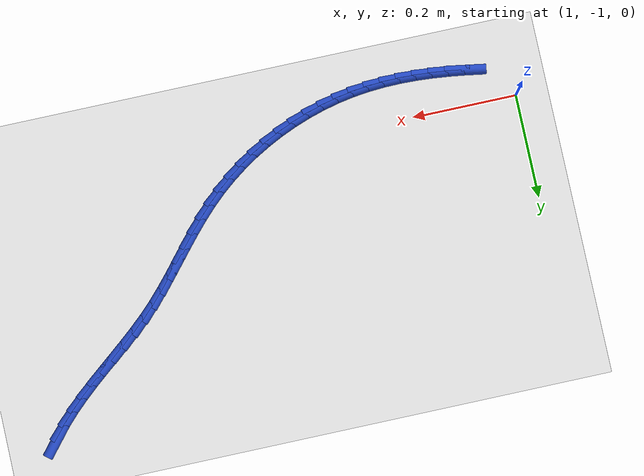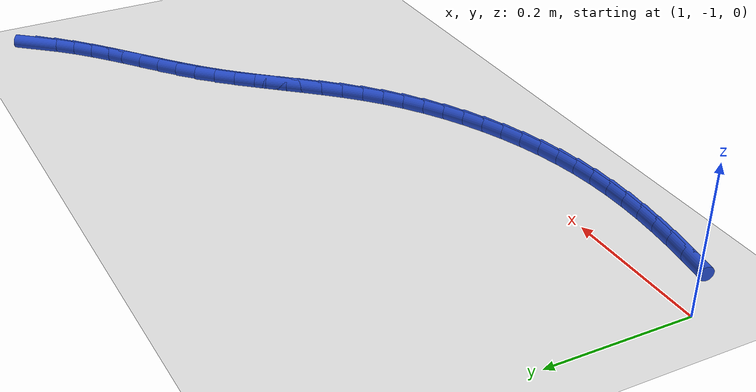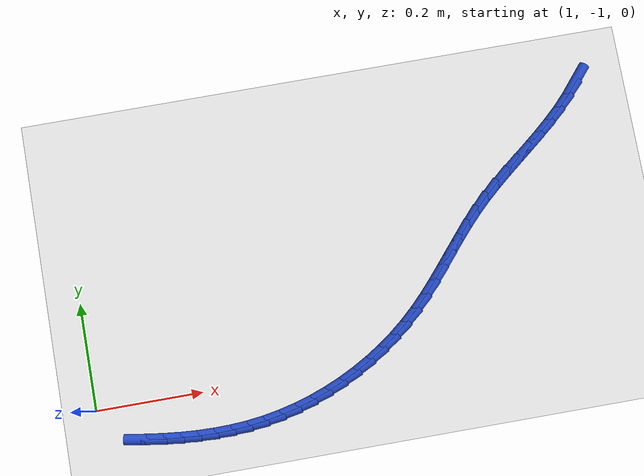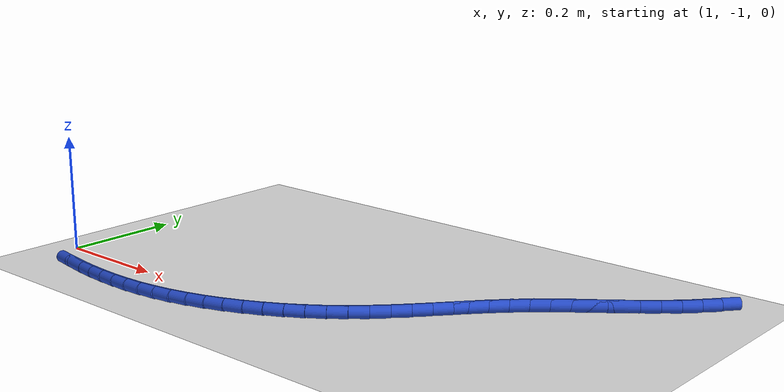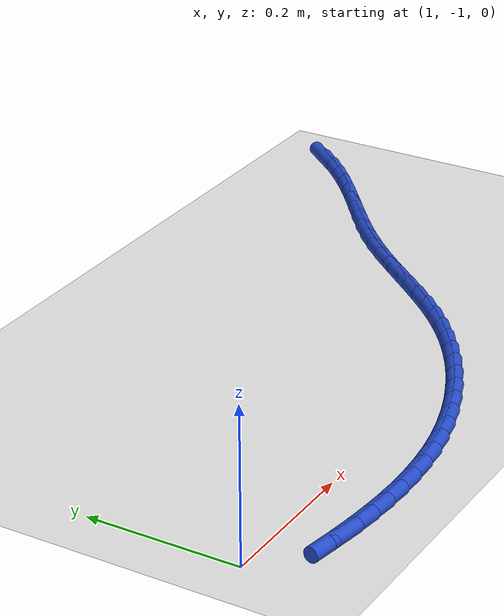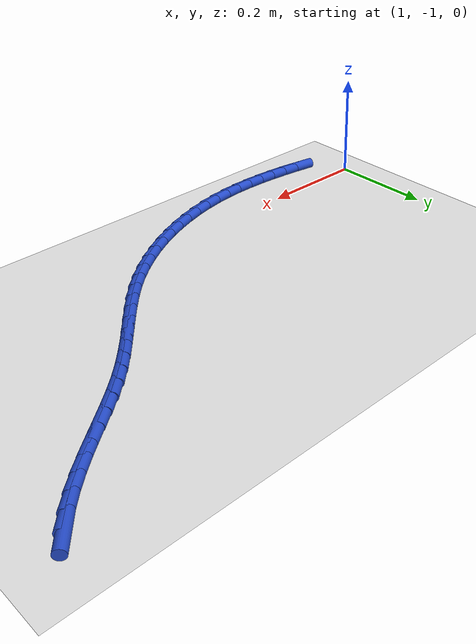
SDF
<sdf version="1.6">
 <world name="default">
  <model name="ground_plane">
   <static>1</static>
   <link name="link">
    <collision name="collision">
     <geometry><plane><normal>0 0 1</normal><size>100 100</size></plane></geometry>
     <surface><friction><ode><mu>100</mu><mu2>50</mu2></ode></friction></surface>
    </collision>
    <visual name="visual">
     <cast_shadows>0</cast_shadows>
     <geometry><plane><normal>0 0 1</normal><size>100 100</size></plane></geometry>
     <material>
      <script><uri>file://media/materials/scripts/gazebo.material</uri><name>Gazebo/WhiteGlow</name></script>
     </material>
    </visual>
   </link>
  </model>
  <model name="line">
   <link name="link_121">
    <pose>1.9877246116815392 -0.5465985021685742 0.01 0 1.57 0.8757215789177172</pose>
    <collision name="collision">
     <geometry><cylinder><radius>0.01</radius><length>0.08</length></cylinder></geometry>
    </collision>
    <visual name="visual">
     <material>
      <script><name>Gazebo/Blue</name><uri>file://media/materials/scripts/gazebo.material</uri></script>
     </material>
     <geometry><cylinder><radius>0.01</radius><length>0.08</length></cylinder></geometry>
    </visual>
   </link>
   <link name="link_122">
    <pose>1.9680293872790298 -0.5702166083770608 0.01 0 1.57 0.8065626346333348</pose>
    <collision name="collision">
     <geometry><cylinder><radius>0.01</radius><length>0.08</length></cylinder></geometry>
    </collision>
    <visual name="visual">
     <material>
      <script><name>Gazebo/Blue</name><uri>file://media/materials/scripts/gazebo.material</uri></script>
     </material>
     <geometry><cylinder><radius>0.01</radius><length>0.08</length></cylinder></geometry>
    </visual>
   </link>
   <link name="link_123">
    <pose>1.9466743241644302 -0.5924952946369927 0.01 0 1.57 0.7523703303545539</pose>
    <collision name="collision">
     <geometry><cylinder><radius>0.01</radius><length>0.08</length></cylinder></geometry>
    </collision>
    <visual name="visual">
     <material>
      <script><name>Gazebo/Blue</name><uri>file://media/materials/scripts/gazebo.material</uri></script>
     </material>
     <geometry><cylinder><radius>0.01</radius><length>0.08</length></cylinder></geometry>
    </visual>
   </link>
   <link name="link_124">
    <pose>1.9239984757561464 -0.6137206538355655 0.01 0 1.57 0.7130007389090254</pose>
    <collision name="collision">
     <geometry><cylinder><radius>0.01</radius><length>0.08</length></cylinder></geometry>
    </collision>
    <visual name="visual">
     <material>
      <script><name>Gazebo/Blue</name><uri>file://media/materials/scripts/gazebo.material</uri></script>
     </material>
     <geometry><cylinder><radius>0.01</radius><length>0.08</length></cylinder></geometry>
    </visual>
   </link>
   <link name="link_125">
    <pose>1.9003408954725862 -0.6341787788599762 0.01 0 1.57 0.6880656786402913</pose>
    <collision name="collision">
     <geometry><cylinder><radius>0.01</radius><length>0.08</length></cylinder></geometry>
    </collision>
    <visual name="visual">
     <material>
      <script><name>Gazebo/Blue</name><uri>file://media/materials/scripts/gazebo.material</uri></script>
     </material>
     <geometry><cylinder><radius>0.01</radius><length>0.08</length></cylinder></geometry>
    </visual>
   </link>
   <link name="link_126">
    <pose>1.8760406367321574 -0.654155762597419 0.01 0 1.57 0.6771854019328604</pose>
    <collision name="collision">
     <geometry><cylinder><radius>0.01</radius><length>0.08</length></cylinder></geometry>
    </collision>
    <visual name="visual">
     <material>
      <script><name>Gazebo/Blue</name><uri>file://media/materials/scripts/gazebo.material</uri></script>
     </material>
     <geometry><cylinder><radius>0.01</radius><length>0.08</length></cylinder></geometry>
    </visual>
   </link>
   <link name="link_127">
    <pose>1.8514367529532674 -0.6739376979350908 0.01 0 1.57 0.6801333423922812</pose>
    <collision name="collision">
     <geometry><cylinder><radius>0.01</radius><length>0.08</length></cylinder></geometry>
    </collision>
    <visual name="visual">
     <material>
      <script><name>Gazebo/Blue</name><uri>file://media/materials/scripts/gazebo.material</uri></script>
     </material>
     <geometry><cylinder><radius>0.01</radius><length>0.08</length></cylinder></geometry>
    </visual>
   </link>
   <link name="link_128">
    <pose>1.826868297554323 -0.6938106777601875 0.01 0 1.57 0.6968925103434557</pose>
    <collision name="collision">
     <geometry><cylinder><radius>0.01</radius><length>0.08</length></cylinder></geometry>
    </collision>
    <visual name="visual">
     <material>
      <script><name>Gazebo/Blue</name><uri>file://media/materials/scripts/gazebo.material</uri></script>
     </material>
     <geometry><cylinder><radius>0.01</radius><length>0.08</length></cylinder></geometry>
    </visual>
   </link>
   <link name="link_129">
    <pose>1.8026743239537315 -0.7140607949599047 0.01 0 1.57 0.727637030055655</pose>
    <collision name="collision">
     <geometry><cylinder><radius>0.01</radius><length>0.08</length></cylinder></geometry>
    </collision>
    <visual name="visual">
     <material>
      <script><name>Gazebo/Blue</name><uri>file://media/materials/scripts/gazebo.material</uri></script>
     </material>
     <geometry><cylinder><radius>0.01</radius><length>0.08</length></cylinder></geometry>
    </visual>
   </link>
   <link name="link_130">
    <pose>1.7791938855699005 -0.7349741424214385 0.01 0 1.57 0.7722240055977929</pose>
    <collision name="collision">
     <geometry><cylinder><radius>0.01</radius><length>0.08</length></cylinder></geometry>
    </collision>
    <visual name="visual">
     <material>
      <script><name>Gazebo/Blue</name><uri>file://media/materials/scripts/gazebo.material</uri></script>
     </material>
     <geometry><cylinder><radius>0.01</radius><length>0.08</length></cylinder></geometry>
    </visual>
   </link>
   <link name="link_131">
    <pose>1.7567562322793313 -0.7568282552362623 0.01 0 1.57 0.8181088693113724</pose>
    <collision name="collision">
     <geometry><cylinder><radius>0.01</radius><length>0.08</length></cylinder></geometry>
    </collision>
    <visual name="visual">
     <material>
      <script><name>Gazebo/Blue</name><uri>file://media/materials/scripts/gazebo.material</uri></script>
     </material>
     <geometry><cylinder><radius>0.01</radius><length>0.08</length></cylinder></geometry>
    </visual>
   </link>
   <link name="link_132">
    <pose>1.735390950921321 -0.7796390839499024 0.01 0 1.57 0.8503718866807272</pose>
    <collision name="collision">
     <geometry><cylinder><radius>0.01</radius><length>0.08</length></cylinder></geometry>
    </collision>
    <visual name="visual">
     <material>
      <script><name>Gazebo/Blue</name><uri>file://media/materials/scripts/gazebo.material</uri></script>
     </material>
     <geometry><cylinder><radius>0.01</radius><length>0.08</length></cylinder></geometry>
    </visual>
   </link>
   <link name="link_133">
    <pose>1.714779842951055 -0.8031189871712913 0.01 0 1.57 0.868083366581772</pose>
    <collision name="collision">
     <geometry><cylinder><radius>0.01</radius><length>0.08</length></cylinder></geometry>
    </collision>
    <visual name="visual">
     <material>
      <script><name>Gazebo/Blue</name><uri>file://media/materials/scripts/gazebo.material</uri></script>
     </material>
     <geometry><cylinder><radius>0.01</radius><length>0.08</length></cylinder></geometry>
    </visual>
   </link>
   <link name="link_134">
    <pose>1.694585214846865 -0.8269633057793294 0.01 0 1.57 0.8712439132798121</pose>
    <collision name="collision">
     <geometry><cylinder><radius>0.01</radius><length>0.08</length></cylinder></geometry>
    </collision>
    <visual name="visual">
     <material>
      <script><name>Gazebo/Blue</name><uri>file://media/materials/scripts/gazebo.material</uri></script>
     </material>
     <geometry><cylinder><radius>0.01</radius><length>0.08</length></cylinder></geometry>
    </visual>
   </link>
   <link name="link_135">
    <pose>1.6744693730870848 -0.8508673806529174 0.01 0 1.57 0.8598487770022336</pose>
    <collision name="collision">
     <geometry><cylinder><radius>0.01</radius><length>0.08</length></cylinder></geometry>
    </collision>
    <visual name="visual">
     <material>
      <script><name>Gazebo/Blue</name><uri>file://media/materials/scripts/gazebo.material</uri></script>
     </material>
     <geometry><cylinder><radius>0.01</radius><length>0.08</length></cylinder></geometry>
    </visual>
   </link>
   <link name="link_136">
    <pose>1.6540946241500456 -0.8745265526709551 0.01 0 1.57 0.8338677449760562</pose>
    <collision name="collision">
     <geometry><cylinder><radius>0.01</radius><length>0.08</length></cylinder></geometry>
    </collision>
    <visual name="visual">
     <material>
      <script><name>Gazebo/Blue</name><uri>file://media/materials/scripts/gazebo.material</uri></script>
     </material>
     <geometry><cylinder><radius>0.01</radius><length>0.08</length></cylinder></geometry>
    </visual>
   </link>
   <link name="link_137">
    <pose>1.6331232745140813 -0.8976361627123434 0.01 0 1.57 0.7933177647486854</pose>
    <collision name="collision">
     <geometry><cylinder><radius>0.01</radius><length>0.08</length></cylinder></geometry>
    </collision>
    <visual name="visual">
     <material>
      <script><name>Gazebo/Blue</name><uri>file://media/materials/scripts/gazebo.material</uri></script>
     </material>
     <geometry><cylinder><radius>0.01</radius><length>0.08</length></cylinder></geometry>
    </visual>
   </link>
   <link name="link_138">
    <pose>1.6112176306575234 -0.9198915516559822 0.01 0 1.57 0.7390192059597903</pose>
    <collision name="collision">
     <geometry><cylinder><radius>0.01</radius><length>0.08</length></cylinder></geometry>
    </collision>
    <visual name="visual">
     <material>
      <script><name>Gazebo/Blue</name><uri>file://media/materials/scripts/gazebo.material</uri></script>
     </material>
     <geometry><cylinder><radius>0.01</radius><length>0.08</length></cylinder></geometry>
    </visual>
   </link>
   <link name="link_139">
    <pose>1.588057200207674 -0.940997481186663 0.01 0 1.57 0.6799031492709348</pose>
    <collision name="collision">
     <geometry><cylinder><radius>0.01</radius><length>0.08</length></cylinder></geometry>
    </collision>
    <visual name="visual">
     <material>
      <script><name>Gazebo/Blue</name><uri>file://media/materials/scripts/gazebo.material</uri></script>
     </material>
     <geometry><cylinder><radius>0.01</radius><length>0.08</length></cylinder></geometry>
    </visual>
   </link>
   <link name="link_140">
    <pose>1.563570438241356 -0.9607950576951936 0.01 0 1.57 0.622251792514076</pose>
    <collision name="collision">
     <geometry><cylinder><radius>0.01</radius><length>0.08</length></cylinder></geometry>
    </collision>
    <visual name="visual">
     <material>
      <script><name>Gazebo/Blue</name><uri>file://media/materials/scripts/gazebo.material</uri></script>
     </material>
     <geometry><cylinder><radius>0.01</radius><length>0.08</length></cylinder></geometry>
    </visual>
   </link>
   <link name="link_141">
    <pose>1.5378732167227862 -0.9792280329317253 0.01 0 1.57 0.5658843209721826</pose>
    <collision name="collision">
     <geometry><cylinder><radius>0.01</radius><length>0.08</length></cylinder></geometry>
    </collision>
    <visual name="visual">
     <material>
      <script><name>Gazebo/Blue</name><uri>file://media/materials/scripts/gazebo.material</uri></script>
     </material>
     <geometry><cylinder><radius>0.01</radius><length>0.08</length></cylinder></geometry>
    </visual>
   </link>
   <link name="link_142">
    <pose>1.5110859908726915 -0.9962426688258175 0.01 0 1.57 0.5104544361159886</pose>
    <collision name="collision">
     <geometry><cylinder><radius>0.01</radius><length>0.08</length></cylinder></geometry>
    </collision>
    <visual name="visual">
     <material>
      <script><name>Gazebo/Blue</name><uri>file://media/materials/scripts/gazebo.material</uri></script>
     </material>
     <geometry><cylinder><radius>0.01</radius><length>0.08</length></cylinder></geometry>
    </visual>
   </link>
   <link name="link_143">
    <pose>1.4833292159117966 -1.0117852273070287 0.01 0 1.57 0.45561191134920603</pose>
    <collision name="collision">
     <geometry><cylinder><radius>0.01</radius><length>0.08</length></cylinder></geometry>
    </collision>
    <visual name="visual">
     <material>
      <script><name>Gazebo/Blue</name><uri>file://media/materials/scripts/gazebo.material</uri></script>
     </material>
     <geometry><cylinder><radius>0.01</radius><length>0.08</length></cylinder></geometry>
    </visual>
   </link>
   <link name="link_144">
    <pose>1.4547233470608283 -1.025801970304917 0.01 0 1.57 0.40100479032100456</pose>
    <collision name="collision">
     <geometry><cylinder><radius>0.01</radius><length>0.08</length></cylinder></geometry>
    </collision>
    <visual name="visual">
     <material>
      <script><name>Gazebo/Blue</name><uri>file://media/materials/scripts/gazebo.material</uri></script>
     </material>
     <geometry><cylinder><radius>0.01</radius><length>0.08</length></cylinder></geometry>
    </visual>
   </link>
   <link name="link_145">
    <pose>1.4253888395405114 -1.0382391597490424 0.01 0 1.57 0.3462806041841633</pose>
    <collision name="collision">
     <geometry><cylinder><radius>0.01</radius><length>0.08</length></cylinder></geometry>
    </collision>
    <visual name="visual">
     <material>
      <script><name>Gazebo/Blue</name><uri>file://media/materials/scripts/gazebo.material</uri></script>
     </material>
     <geometry><cylinder><radius>0.01</radius><length>0.08</length></cylinder></geometry>
    </visual>
   </link>
   <link name="link_146">
    <pose>1.395446148571573 -1.049043057568962 0.01 0 1.57 0.2910872043693054</pose>
    <collision name="collision">
     <geometry><cylinder><radius>0.01</radius><length>0.08</length></cylinder></geometry>
    </collision>
    <visual name="visual">
     <material>
      <script><name>Gazebo/Blue</name><uri>file://media/materials/scripts/gazebo.material</uri></script>
     </material>
     <geometry><cylinder><radius>0.01</radius><length>0.08</length></cylinder></geometry>
    </visual>
   </link>
   <link name="link_147">
    <pose>1.365015729374738 -1.0581599256942358 0.01 0 1.57 0.23507378850041896</pose>
    <collision name="collision">
     <geometry><cylinder><radius>0.01</radius><length>0.08</length></cylinder></geometry>
    </collision>
    <visual name="visual">
     <material>
      <script><name>Gazebo/Blue</name><uri>file://media/materials/scripts/gazebo.material</uri></script>
     </material>
     <geometry><cylinder><radius>0.01</radius><length>0.08</length></cylinder></geometry>
    </visual>
   </link>
   <link name="link_148">
    <pose>1.3342180371707326 -1.0655360260544215 0.01 0 1.57 0.17789270627103743</pose>
    <collision name="collision">
     <geometry><cylinder><radius>0.01</radius><length>0.08</length></cylinder></geometry>
    </collision>
    <visual name="visual">
     <material>
      <script><name>Gazebo/Blue</name><uri>file://media/materials/scripts/gazebo.material</uri></script>
     </material>
     <geometry><cylinder><radius>0.01</radius><length>0.08</length></cylinder></geometry>
    </visual>
   </link>
   <link name="link_149">
    <pose>1.303173527180283 -1.0711176205790789 0.01 0 1.57 0.11972615830149921</pose>
    <collision name="collision">
     <geometry><cylinder><radius>0.01</radius><length>0.08</length></cylinder></geometry>
    </collision>
    <visual name="visual">
     <material>
      <script><name>Gazebo/Blue</name><uri>file://media/materials/scripts/gazebo.material</uri></script>
     </material>
     <geometry><cylinder><radius>0.01</radius><length>0.08</length></cylinder></geometry>
    </visual>
   </link>
   <link name="link_150">
    <pose>1.2719953922619065 -1.074868397700033 0.01 0 1.57 0.06445104878381341</pose>
    <collision name="collision">
     <geometry><cylinder><radius>0.01</radius><length>0.08</length></cylinder></geometry>
    </collision>
    <visual name="visual">
     <material>
      <script><name>Gazebo/Blue</name><uri>file://media/materials/scripts/gazebo.material</uri></script>
     </material>
     <geometry><cylinder><radius>0.01</radius><length>0.08</length></cylinder></geometry>
    </visual>
   </link>
   <link name="link_151">
    <pose>1.2407411851196957 -1.0768855579557095 0.01 0 1.57 0.014136572591301624</pose>
    <collision name="collision">
     <geometry><cylinder><radius>0.01</radius><length>0.08</length></cylinder></geometry>
    </collision>
    <visual name="visual">
     <material>
      <script><name>Gazebo/Blue</name><uri>file://media/materials/scripts/gazebo.material</uri></script>
     </material>
     <geometry><cylinder><radius>0.01</radius><length>0.08</length></cylinder></geometry>
    </visual>
   </link>
   <link name="link_152">
    <pose>1.2094427294335284 -1.0773280403225267 0.01 0 1.57 -0.031062843719119403</pose>
    <collision name="collision">
     <geometry><cylinder><radius>0.01</radius><length>0.08</length></cylinder></geometry>
    </collision>
    <visual name="visual">
     <material>
      <script><name>Gazebo/Blue</name><uri>file://media/materials/scripts/gazebo.material</uri></script>
     </material>
     <geometry><cylinder><radius>0.01</radius><length>0.08</length></cylinder></geometry>
    </visual>
   </link>
   <link name="link_153">
    <pose>1.1781317095727353 -1.0763551180614592 0.01 0 1.57 -0.07111408334739344</pose>
    <collision name="collision">
     <geometry><cylinder><radius>0.01</radius><length>0.08</length></cylinder></geometry>
    </collision>
    <visual name="visual">
     <material>
      <script><name>Gazebo/Blue</name><uri>file://media/materials/scripts/gazebo.material</uri></script>
     </material>
     <geometry><cylinder><radius>0.01</radius><length>0.08</length></cylinder></geometry>
    </visual>
   </link>
   <link name="link_154">
    <pose>1.1468398099066481 -1.0741260644334805 0.01 0 1.57 -0.10606003403860752</pose>
    <collision name="collision">
     <geometry><cylinder><radius>0.01</radius><length>0.08</length></cylinder></geometry>
    </collision>
    <visual name="visual">
     <material>
      <script><name>Gazebo/Blue</name><uri>file://media/materials/scripts/gazebo.material</uri></script>
     </material>
     <geometry><cylinder><radius>0.01</radius><length>0.08</length></cylinder></geometry>
    </visual>
   </link>
   <link name="link_155">
    <pose>1.1155987148045983 -1.070800152699565 0.01 0 1.57 -0.13598756717750848</pose>
    <collision name="collision">
     <geometry><cylinder><radius>0.01</radius><length>0.08</length></cylinder></geometry>
    </collision>
    <visual name="visual">
     <material>
      <script><name>Gazebo/Blue</name><uri>file://media/materials/scripts/gazebo.material</uri></script>
     </material>
     <geometry><cylinder><radius>0.01</radius><length>0.08</length></cylinder></geometry>
    </visual>
   </link>
   <link name="link_156">
    <pose>1.0844401086359172 -1.0665366561206866 0.01 0 1.57 -0.16100050977151323</pose>
    <collision name="collision">
     <geometry><cylinder><radius>0.01</radius><length>0.08</length></cylinder></geometry>
    </collision>
    <visual name="visual">
     <material>
      <script><name>Gazebo/Blue</name><uri>file://media/materials/scripts/gazebo.material</uri></script>
     </material>
     <geometry><cylinder><radius>0.01</radius><length>0.08</length></cylinder></geometry>
    </visual>
   </link>
  </model>
 </world>
</sdf>
